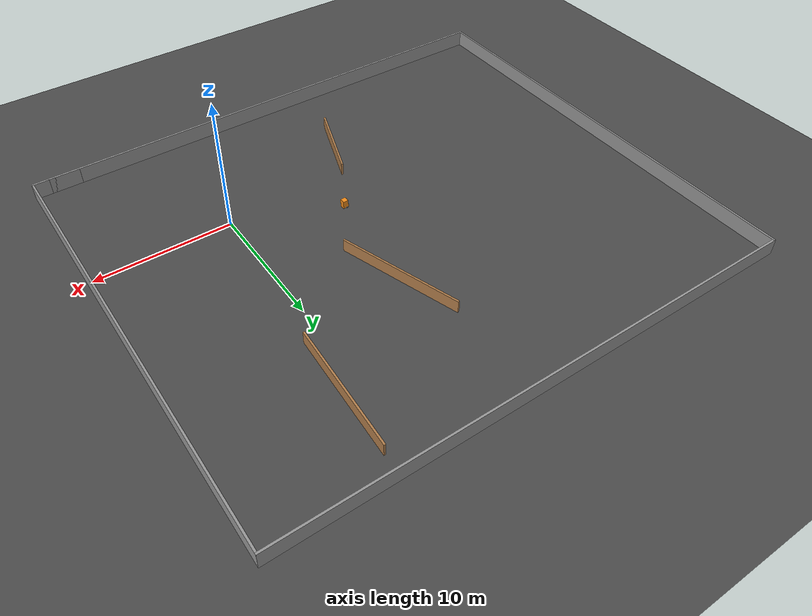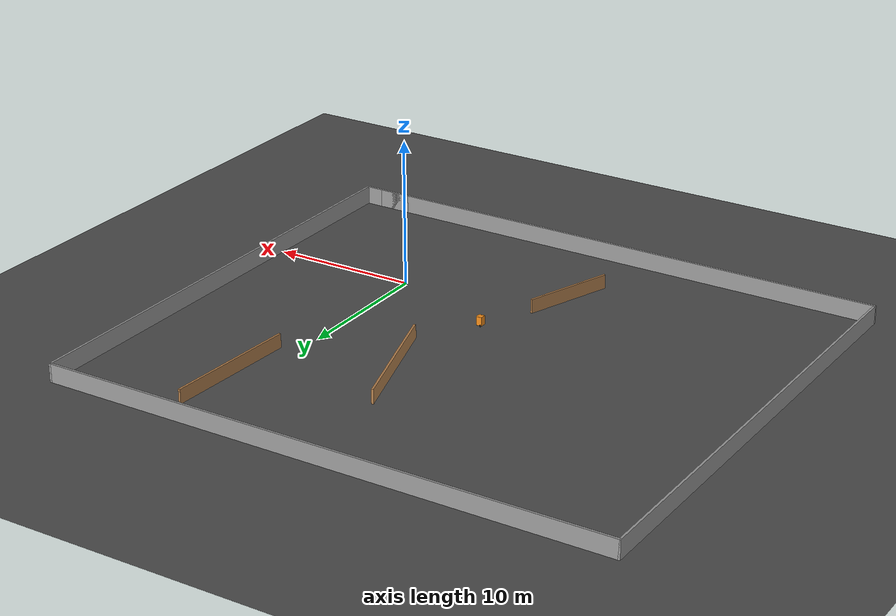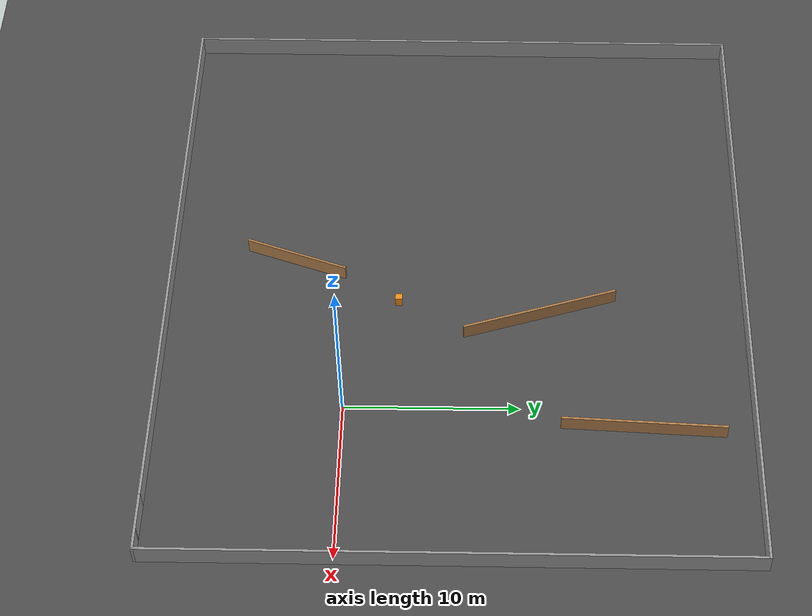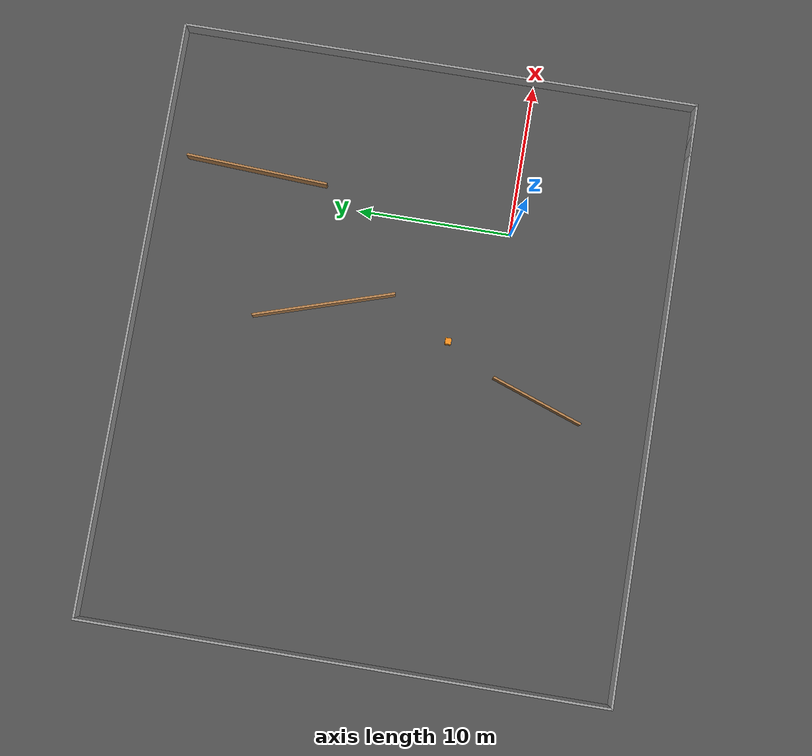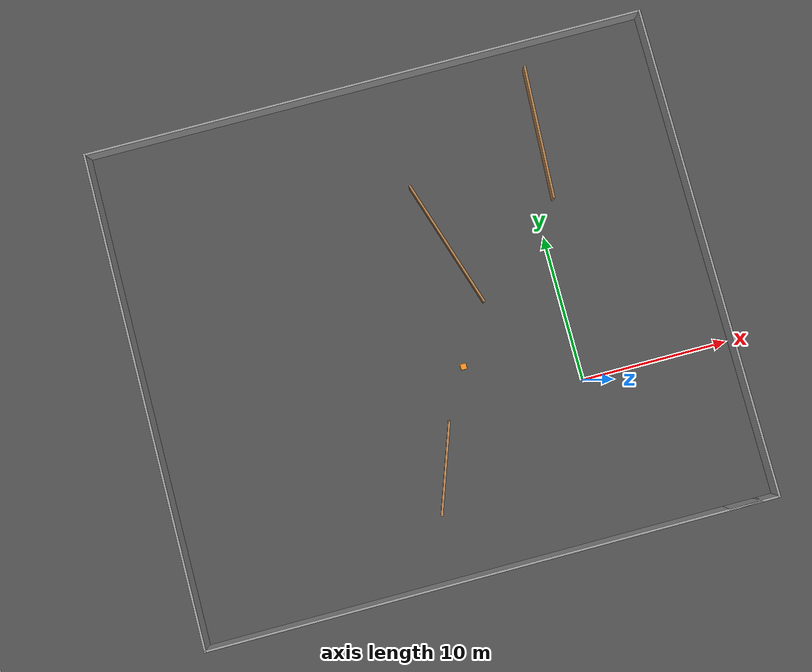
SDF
<sdf version="1.6">
 <world name="default">
  <model name="ground_plane">
   <static>1</static>
   <link name="link">
    <collision name="collision">
     <geometry><plane><normal>0 0 1</normal><size>100 100</size></plane></geometry>
     <surface><friction><ode><mu>100</mu><mu2>50</mu2></ode></friction></surface>
    </collision>
    <visual name="visual">
     <cast_shadows>0</cast_shadows>
     <geometry><plane><normal>0 0 1</normal><size>100 100</size></plane></geometry>
     <material>
      <script>
       <uri>model://asphalt_plane/materials/scripts</uri>
       <uri>model://asphalt_plane/materials/textures</uri>
       <name>vrc/asphalt</name>
      </script>
     </material>
    </visual>
    <velocity_decay><linear>0</linear><angular>0</angular></velocity_decay>
   </link>
  </model>
  <model name="unit_box">
   <link name="link">
    <inertial>
     <mass>1</mass>
     <inertia>
      <ixx>0.166667</ixx>
      <ixy>0</ixy>
      <ixz>0</ixz>
      <iyy>0.166667</iyy>
      <iyz>0</iyz>
      <izz>0.166667</izz>
     </inertia>
    </inertial>
    <visual name="visual">
     <geometry><box><size>0.143826 6.27763 0.957801</size></box></geometry>
     <material>
      <script><name>Gazebo/Wood</name><uri>file://media/materials/scripts/gazebo.material</uri></script>
      <shader type="pixel"><normal_map>__default__</normal_map></shader>
      <ambient>1 1 1 1</ambient>
      <diffuse>1 1 1 1</diffuse>
      <specular>0.2 0.2 0.2 1</specular>
      <emissive>0 0 0 1</emissive>
     </material>
    </visual>
    <collision name="collision">
     <geometry><box><size>0.143826 6.27763 0.957801</size></box></geometry>
     <surface>
      <friction>
       <ode><mu>1</mu><mu2>1</mu2><fdir1>0 0 0</fdir1><slip1>0</slip1><slip2>0</slip2></ode>
       <torsional>
        <coefficient>1</coefficient>
        <patch_radius>0</patch_radius>
        <surface_radius>0</surface_radius>
        <use_patch_radius>1</use_patch_radius>
        <ode><slip>0</slip></ode>
       </torsional>
      </friction>
      <bounce><restitution_coefficient>0</restitution_coefficient><threshold>1e+06</threshold></bounce>
      <contact>
       <collide_without_contact>0</collide_without_contact>
       <collide_without_contact_bitmask>1</collide_without_contact_bitmask>
       <collide_bitmask>1</collide_bitmask>
       <ode>
        <soft_cfm>0</soft_cfm>
        <soft_erp>0.2</soft_erp>
        <kp>1e+13</kp>
        <kd>1</kd>
        <max_vel>0.01</max_vel>
        <min_depth>0</min_depth>
       </ode>
       <bullet>
        <split_impulse>1</split_impulse>
        <split_impulse_penetration_threshold>-0.01</split_impulse_penetration_threshold>
        <soft_cfm>0</soft_cfm>
        <soft_erp>0.2</soft_erp>
        <kp>1e+13</kp>
        <kd>1</kd>
       </bullet>
      </contact>
     </surface>
    </collision>
   </link>
   <static>1</static>
   <pose>-10.4691 -3.23586 0.549798 0.000381 0.000133 -0.339065</pose>
  </model>
  <model name="unit_box_clone">
   <link name="link">
    <inertial>
     <mass>1</mass>
     <inertia>
      <ixx>0.166667</ixx>
      <ixy>0</ixy>
      <ixz>0</ixz>
      <iyy>0.166667</iyy>
      <iyz>0</iyz>
      <izz>0.166667</izz>
     </inertia>
    </inertial>
    <visual name="visual">
     <geometry><box><size>0.143826 9.32052 0.957801</size></box></geometry>
     <material>
      <script><name>Gazebo/Wood</name><uri>file://media/materials/scripts/gazebo.material</uri></script>
      <shader type="pixel"><normal_map>__default__</normal_map></shader>
      <ambient>1 1 1 1</ambient>
      <diffuse>1 1 1 1</diffuse>
      <specular>0.2 0.2 0.2 1</specular>
      <emissive>0 0 0 1</emissive>
     </material>
    </visual>
    <collision name="collision">
     <geometry><box><size>0.143826 9.32052 0.957801</size></box></geometry>
     <surface>
      <friction>
       <ode><mu>1</mu><mu2>1</mu2><fdir1>0 0 0</fdir1><slip1>0</slip1><slip2>0</slip2></ode>
       <torsional>
        <coefficient>1</coefficient>
        <patch_radius>0</patch_radius>
        <surface_radius>0</surface_radius>
        <use_patch_radius>1</use_patch_radius>
        <ode><slip>0</slip></ode>
       </torsional>
      </friction>
      <bounce><restitution_coefficient>0</restitution_coefficient><threshold>1e+06</threshold></bounce>
      <contact>
       <collide_without_contact>0</collide_without_contact>
       <collide_without_contact_bitmask>1</collide_without_contact_bitmask>
       <collide_bitmask>1</collide_bitmask>
       <ode>
        <soft_cfm>0</soft_cfm>
        <soft_erp>0.2</soft_erp>
        <kp>1e+13</kp>
        <kd>1</kd>
        <max_vel>0.01</max_vel>
        <min_depth>0</min_depth>
       </ode>
       <bullet>
        <split_impulse>1</split_impulse>
        <split_impulse_penetration_threshold>-0.01</split_impulse_penetration_threshold>
        <soft_cfm>0</soft_cfm>
        <soft_erp>0.2</soft_erp>
        <kp>1e+13</kp>
        <kd>1</kd>
       </bullet>
      </contact>
     </surface>
    </collision>
   </link>
   <static>1</static>
   <pose>-6.53491 11.2039 0.549798 0.000384 -0.000124 0.309079</pose>
  </model>
  <model name="unit_box_clone_clone">
   <link name="link">
    <inertial>
     <mass>1</mass>
     <inertia>
      <ixx>0.166667</ixx>
      <ixy>0</ixy>
      <ixz>0</ixz>
      <iyy>0.166667</iyy>
      <iyz>0</iyz>
      <izz>0.166667</izz>
     </inertia>
    </inertial>
    <visual name="visual">
     <geometry><box><size>0.143826 9.3205 0.957801</size></box></geometry>
     <material>
      <script><name>Gazebo/Wood</name><uri>file://media/materials/scripts/gazebo.material</uri></script>
      <shader type="pixel"><normal_map>__default__</normal_map></shader>
      <ambient>1 1 1 1</ambient>
      <diffuse>1 1 1 1</diffuse>
      <specular>0.2 0.2 0.2 1</specular>
      <emissive>0 0 0 1</emissive>
     </material>
    </visual>
    <collision name="collision">
     <geometry><box><size>0.143826 9.3205 0.957801</size></box></geometry>
     <surface>
      <friction>
       <ode><mu>1</mu><mu2>1</mu2><fdir1>0 0 0</fdir1><slip1>0</slip1><slip2>0</slip2></ode>
       <torsional>
        <coefficient>1</coefficient>
        <patch_radius>0</patch_radius>
        <surface_radius>0</surface_radius>
        <use_patch_radius>1</use_patch_radius>
        <ode><slip>0</slip></ode>
       </torsional>
      </friction>
      <bounce><restitution_coefficient>0</restitution_coefficient><threshold>1e+06</threshold></bounce>
      <contact>
       <collide_without_contact>0</collide_without_contact>
       <collide_without_contact_bitmask>1</collide_without_contact_bitmask>
       <collide_bitmask>1</collide_bitmask>
       <ode>
        <soft_cfm>0</soft_cfm>
        <soft_erp>0.2</soft_erp>
        <kp>1e+13</kp>
        <kd>1</kd>
        <max_vel>0.01</max_vel>
        <min_depth>0</min_depth>
       </ode>
       <bullet>
        <split_impulse>1</split_impulse>
        <split_impulse_penetration_threshold>-0.01</split_impulse_penetration_threshold>
        <soft_cfm>0</soft_cfm>
        <soft_erp>0.2</soft_erp>
        <kp>1e+13</kp>
        <kd>1</kd>
       </bullet>
      </contact>
     </surface>
    </collision>
   </link>
   <static>1</static>
   <pose>1.48026 16.9645 0.549798 0.000403 1.9e-05 -0.051172</pose>
  </model>
  <model name="Untitled">
   <pose>-9.18223 6.3174 -1.29898 0 -0 0</pose>
   <link name="Wall_0">
    <collision name="Wall_0_Collision">
     <geometry><box><size>37.75 0.15 2.5</size></box></geometry>
     <pose>0 0 1.25 0 -0 0</pose>
    </collision>
    <visual name="Wall_0_Visual">
     <pose>0 0 1.25 0 -0 0</pose>
     <geometry><box><size>37.75 0.15 2.5</size></box></geometry>
     <material>
      <script><uri>file://media/materials/scripts/gazebo.material</uri><name>Gazebo/Grey</name></script>
      <ambient>1 1 1 1</ambient>
     </material>
     <meta><layer>0</layer></meta>
    </visual>
    <pose>-0.625 -16.925 0 0 -0 0</pose>
   </link>
   <link name="Wall_2">
    <collision name="Wall_2_Collision">
     <geometry><box><size>34 0.15 2.5</size></box></geometry>
     <pose>0 0 1.25 0 -0 0</pose>
    </collision>
    <visual name="Wall_2_Visual">
     <pose>0 0 1.25 0 -0 0</pose>
     <geometry><box><size>34 0.15 2.5</size></box></geometry>
     <material>
      <script><uri>file://media/materials/scripts/gazebo.material</uri><name>Gazebo/Grey</name></script>
      <ambient>1 1 1 1</ambient>
     </material>
     <meta><layer>0</layer></meta>
    </visual>
    <pose>-19.425 0 0 0 -0 1.5708</pose>
   </link>
   <link name="Wall_3">
    <collision name="Wall_3_Collision">
     <geometry><box><size>39 0.15 2.5</size></box></geometry>
     <pose>0 0 1.25 0 -0 0</pose>
    </collision>
    <visual name="Wall_3_Visual">
     <pose>0 0 1.25 0 -0 0</pose>
     <geometry><box><size>39 0.15 2.5</size></box></geometry>
     <material>
      <script><uri>file://media/materials/scripts/gazebo.material</uri><name>Gazebo/Grey</name></script>
      <ambient>1 1 1 1</ambient>
     </material>
     <meta><layer>0</layer></meta>
    </visual>
    <pose>0 16.925 0 0 -0 0</pose>
   </link>
   <link name="Wall_4">
    <collision name="Wall_4_Collision">
     <geometry><box><size>34 0.15 2.5</size></box></geometry>
     <pose>0 0 1.25 0 -0 0</pose>
    </collision>
    <visual name="Wall_4_Visual">
     <pose>0 0 1.25 0 -0 0</pose>
     <geometry><box><size>34 0.15 2.5</size></box></geometry>
     <material>
      <script><uri>file://media/materials/scripts/gazebo.material</uri><name>Gazebo/Grey</name></script>
      <ambient>1 1 1 1</ambient>
     </material>
     <meta><layer>0</layer></meta>
    </visual>
    <pose>19.425 0 0 0 -0 -1.5708</pose>
   </link>
   <link name="Wall_5">
    <collision name="Wall_5_Collision">
     <geometry><box><size>3.5 0.15 2.5</size></box></geometry>
     <pose>0 0 1.25 0 -0 0</pose>
    </collision>
    <visual name="Wall_5_Visual">
     <pose>0 0 1.25 0 -0 0</pose>
     <geometry><box><size>3.5 0.15 2.5</size></box></geometry>
     <material>
      <script><uri>file://media/materials/scripts/gazebo.material</uri><name>Gazebo/Grey</name></script>
      <ambient>1 1 1 1</ambient>
     </material>
     <meta><layer>0</layer></meta>
    </visual>
    <pose>17.75 -16.925 0 0 -0 3.14159</pose>
   </link>
   <static>1</static>
  </model>
  <model name="arm_base">
   <link name="base_link">
    <inertial>
     <mass>5</mass>
     <inertia><ixx>0.13</ixx><ixy>0</ixy><ixz>0</ixz><iyy>0.21</iyy><iyz>0</iyz><izz>0.13</izz></inertia>
    </inertial>
    <visual name="base_link_visual">
     <pose>0.1 0 0.3 0 -0 0</pose>
     <geometry><box><size>0.4 0.39 0.6</size></box></geometry>
     <material>
      <script><name>Gazebo/Orange</name><uri>file://media/materials/scripts/gazebo.material</uri></script>
      <shader type="pixel"/>
     </material>
    </visual>
    <visual name="base_link_fixed_joint_lump__laser_link_visual_1">
     <pose>0.29 0 -0.01 0 -0 0</pose>
     <geometry><cylinder><length>0.02</length><radius>0.01</radius></cylinder></geometry>
     <material>
      <script><name>Gazebo/Red</name><uri>file://media/materials/scripts/gazebo.material</uri></script>
      <shader type="pixel"/>
     </material>
    </visual>
    <collision name="base_link_collision">
     <pose>0.1 0 0.3 0 -0 0</pose>
     <geometry><box><size>0.4 0.3 0.6</size></box></geometry>
    </collision>
   </link>
   <link name="front_wheel_link">
    <pose>0.2 0 -0.045 0 -0 0</pose>
    <inertial>
     <mass>0.5</mass>
     <inertia>
      <ixx>9.4792e-05</ixx>
      <ixy>0</ixy>
      <ixz>0</ixz>
      <iyy>0.00015625</iyy>
      <iyz>0</iyz>
      <izz>9.4792e-05</izz>
     </inertia>
    </inertial>
    <visual name="front_wheel_link_visual">
     <pose>0 0 0 1.57 -0 0</pose>
     <geometry><cylinder><length>0.02</length><radius>0.025</radius></cylinder></geometry>
     <material>
      <script><name>Gazebo/Black</name><uri>file://media/materials/scripts/gazebo.material</uri></script>
      <shader type="pixel"/>
     </material>
    </visual>
    <collision name="front_wheel_link_collision">
     <pose>0 0 0 1.57 -0 0</pose>
     <geometry><cylinder><radius>0.025</radius><length>0.02</length></cylinder></geometry>
    </collision>
   </link>
   <link name="left_wheel_link">
    <pose>0 0.175 -0 0 -0 0</pose>
    <inertial>
     <mass>2</mass>
     <inertia><ixx>0.002867</ixx><ixy>0</ixy><ixz>0</ixz><iyy>0.0049</iyy><iyz>0</iyz><izz>0.002867</izz></inertia>
    </inertial>
    <visual name="left_wheel_link_visual">
     <pose>0 0 0 1.57 -0 0</pose>
     <geometry><cylinder><length>0.05</length><radius>0.07</radius></cylinder></geometry>
     <material>
      <script><name>Gazebo/Black</name><uri>file://media/materials/scripts/gazebo.material</uri></script>
      <shader type="pixel"/>
     </material>
    </visual>
    <collision name="left_wheel_link_collision">
     <pose>0 0 0 1.57 -0 0</pose>
     <geometry><cylinder><radius>0.07</radius><length>0.05</length></cylinder></geometry>
    </collision>
   </link>
   <link name="right_wheel_link">
    <pose>0 -0.175 0 0 -0 0</pose>
    <inertial>
     <mass>2</mass>
     <inertia><ixx>0.002867</ixx><ixy>0</ixy><ixz>0</ixz><iyy>0.0049</iyy><iyz>0</iyz><izz>0.002867</izz></inertia>
    </inertial>
    <visual name="right_wheel_link_visual">
     <pose>0 0 0 1.57 -0 0</pose>
     <geometry><cylinder><length>0.05</length><radius>0.07</radius></cylinder></geometry>
     <material>
      <script><name>Gazebo/Black</name><uri>file://media/materials/scripts/gazebo.material</uri></script>
      <shader type="pixel"/>
     </material>
    </visual>
    <collision name="right_wheel_link_collision">
     <pose>0 0 0 1.57 -0 0</pose>
     <geometry><cylinder><radius>0.07</radius><length>0.05</length></cylinder></geometry>
    </collision>
   </link>
   <link name="universal_wheel_link">
    <pose>0.2 0 -0.01 0 -0 0</pose>
    <inertial>
     <mass>0.5</mass>
     <inertia>
      <ixx>9.4792e-05</ixx>
      <ixy>0</ixy>
      <ixz>0</ixz>
      <iyy>0.00015625</iyy>
      <iyz>0</iyz>
      <izz>9.4792e-05</izz>
     </inertia>
    </inertial>
    <visual name="universal_wheel_link_visual">
     <geometry><cylinder><length>0.02</length><radius>0.025</radius></cylinder></geometry>
     <material>
      <script><name>Gazebo/Black</name><uri>file://media/materials/scripts/gazebo.material</uri></script>
      <shader type="pixel"/>
     </material>
    </visual>
    <collision name="universal_wheel_link_collision">
     <geometry><cylinder><radius>0.025</radius><length>0.02</length></cylinder></geometry>
    </collision>
   </link>
   <joint name="joint_fw" type="revolute">
    <parent>universal_wheel_link</parent>
    <child>front_wheel_link</child>
    <axis>
     <xyz>0 1 0</xyz>
     <use_parent_model_frame>0</use_parent_model_frame>
     <limit><lower>-1e+16</lower><upper>1e+16</upper></limit>
     <dynamics><spring_reference>0</spring_reference><spring_stiffness>0</spring_stiffness></dynamics>
    </axis>
   </joint>
   <joint name="joint_lw" type="revolute">
    <parent>base_link</parent>
    <child>left_wheel_link</child>
    <axis>
     <xyz>0 1 0</xyz>
     <use_parent_model_frame>0</use_parent_model_frame>
     <limit><lower>-1e+16</lower><upper>1e+16</upper></limit>
     <dynamics><spring_reference>0</spring_reference><spring_stiffness>0</spring_stiffness></dynamics>
    </axis>
   </joint>
   <joint name="joint_rw" type="revolute">
    <parent>base_link</parent>
    <child>right_wheel_link</child>
    <axis>
     <xyz>0 1 0</xyz>
     <use_parent_model_frame>0</use_parent_model_frame>
     <limit><lower>-1e+16</lower><upper>1e+16</upper></limit>
     <dynamics><spring_reference>0</spring_reference><spring_stiffness>0</spring_stiffness></dynamics>
    </axis>
   </joint>
   <joint name="joint_uw" type="revolute">
    <parent>base_link</parent>
    <child>universal_wheel_link</child>
    <axis>
     <xyz>0 0 1</xyz>
     <use_parent_model_frame>0</use_parent_model_frame>
     <limit><lower>-1e+16</lower><upper>1e+16</upper></limit>
     <dynamics><spring_reference>0</spring_reference><spring_stiffness>0</spring_stiffness></dynamics>
    </axis>
   </joint>
   <static>1</static>
   <pose>-7.6715 2.92989 0.068795 0 -0 0</pose>
  </model>
 </world>
</sdf>
